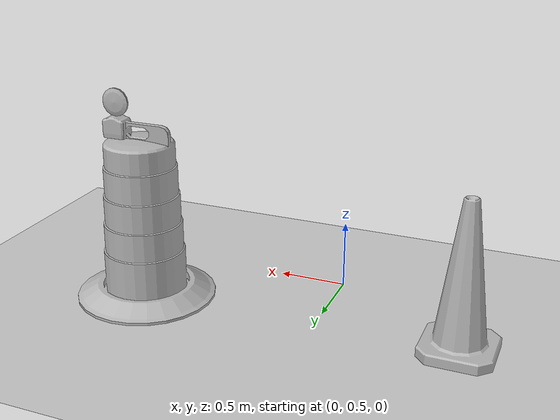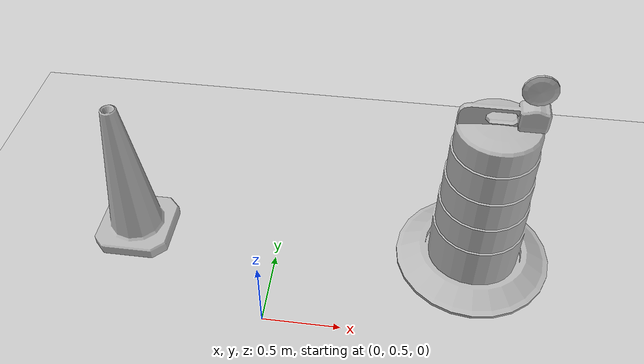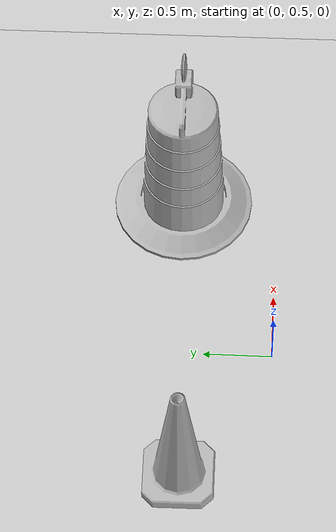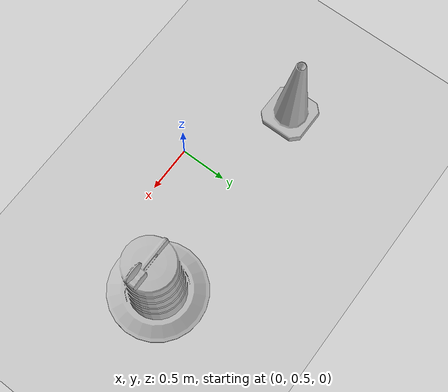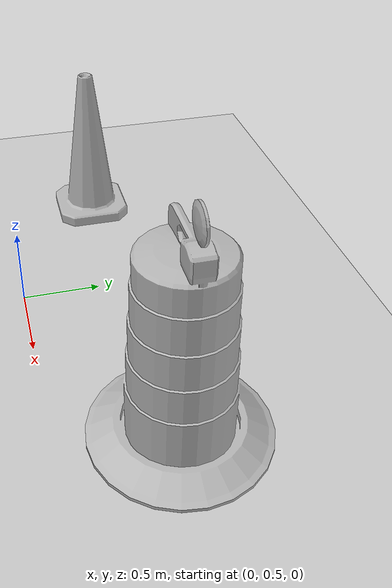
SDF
<sdf version="1.7">
 <world name="default">
  <model name="ground_plane">
   <static>1</static>
   <link name="link">
    <collision name="collision">
     <geometry><plane><normal>0 0 1</normal><size>100 100</size></plane></geometry>
     <surface>
      <contact><collide_bitmask>65535</collide_bitmask></contact>
      <friction><ode><mu>100</mu><mu2>50</mu2></ode></friction>
     </surface>
    </collision>
    <visual name="visual">
     <cast_shadows>0</cast_shadows>
     <geometry><plane><normal>0 0 1</normal><size>100 100</size></plane></geometry>
     <material>
      <script><uri>file://media/materials/scripts/gazebo.material</uri><name>Gazebo/Grey</name></script>
     </material>
    </visual>
   </link>
  </model>
  <model name="Construction Cone">
   <link name="link">
    <collision name="collision">
     <geometry>
      <mesh><scale>10 10 10</scale><uri>model://construction_cone/meshes/construction_cone.dae</uri></mesh>
     </geometry>
    </collision>
    <visual name="visual">
     <geometry>
      <mesh><scale>10 10 10</scale><uri>model://construction_cone/meshes/construction_cone.dae</uri></mesh>
     </geometry>
    </visual>
    <inertial>
     <inertia><ixx>1</ixx><ixy>0</ixy><ixz>0</ixz><iyy>1</iyy><iyz>0</iyz><izz>1</izz></inertia>
     <mass>1</mass>
    </inertial>
   </link>
   <pose>-1.00525 1.13466 -0 0 -1e-06 0</pose>
  </model>
  <model name="Construction Barrel_0">
   <link name="link">
    <inertial>
     <pose>0 0 0.4 0 -0 0</pose>
     <mass>500</mass>
     <inertia><ixx>51.2096</ixx><iyy>51.2096</iyy><izz>25</izz><ixy>0</ixy><ixz>0</ixz><iyz>0</iyz></inertia>
    </inertial>
    <collision name="collision">
     <geometry><mesh><uri>model://construction_barrel/meshes/construction_barrel.dae</uri></mesh></geometry>
    </collision>
    <visual name="visual">
     <geometry><mesh><uri>model://construction_barrel/meshes/construction_barrel.dae</uri></mesh></geometry>
    </visual>
   </link>
   <pose>1.31585 1.19087 0 0 0 -1e-05</pose>
  </model>
 </world>
</sdf>
